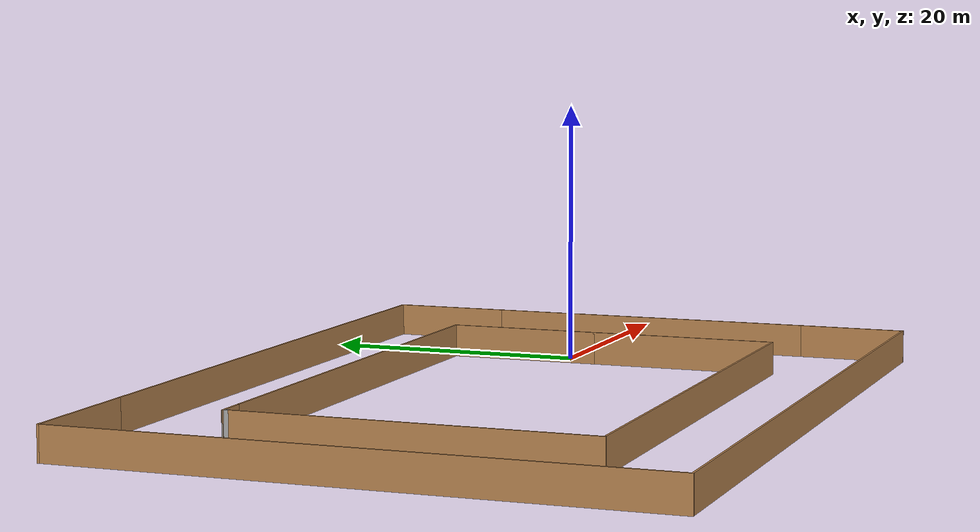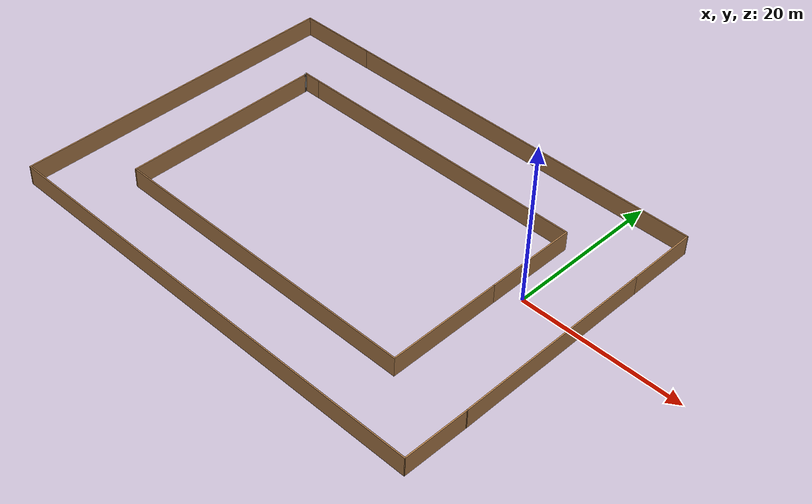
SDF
<?xml version='1.0'?>
<sdf version='1.6'>
  <model name='training_scenarios.world'>
    <pose frame=''>-21.56 -3.68808 0 0 -0 0</pose>
    <link name='Wall_0'>
      <collision name='Wall_0_Collision'>
        <geometry>
          <box>
            <size>11.75 0.15 2.5</size>
          </box>
        </geometry>
        <pose frame=''>0 0 1.25 0 -0 0</pose>
      </collision>
      <visual name='Wall_0_Visual'>
        <pose frame=''>0 0 1.25 0 -0 0</pose>
        <geometry>
          <box>
            <size>11.75 0.15 2.5</size>
          </box>
        </geometry>
        <material>
          <script>
            <uri>file://media/materials/scripts/gazebo.material</uri>
            <name>Gazebo/Wood</name>
          </script>
          <ambient>1 1 1 1</ambient>
        </material>
        <meta>
          <layer>0</layer>
        </meta>
      </visual>
      <pose frame=''>19.67 6.94808 0 0 -0 1.5708</pose>
    </link>
    <link name='Wall_10'>
      <collision name='Wall_10_Collision'>
        <geometry>
          <box>
            <size>48 0.15 2.5</size>
          </box>
        </geometry>
        <pose frame=''>0 0 1.25 0 -0 0</pose>
      </collision>
      <visual name='Wall_10_Visual'>
        <pose frame=''>0 0 1.25 0 -0 0</pose>
        <geometry>
          <box>
            <size>48 0.15 2.5</size>
          </box>
        </geometry>
        <material>
          <script>
            <uri>file://media/materials/scripts/gazebo.material</uri>
            <name>Gazebo/Wood</name>
          </script>
          <ambient>1 1 1 1</ambient>
        </material>
        <meta>
          <layer>0</layer>
        </meta>
      </visual>
      <pose frame=''>5.04954 21.3005 0 0 -0 3.14159</pose>
    </link>
    <link name='Wall_11'>
      <collision name='Wall_11_Collision'>
        <geometry>
          <box>
            <size>10.25 0.15 2.5</size>
          </box>
        </geometry>
        <pose frame=''>0 0 1.25 0 -0 0</pose>
      </collision>
      <visual name='Wall_11_Visual'>
        <pose frame=''>0 0 1.25 0 -0 0</pose>
        <geometry>
          <box>
            <size>10.25 0.15 2.5</size>
          </box>
        </geometry>
        <material>
          <script>
            <uri>file://media/materials/scripts/gazebo.material</uri>
            <name>Gazebo/Wood</name>
          </script>
          <ambient>1 1 1 1</ambient>
        </material>
        <meta>
          <layer>0</layer>
        </meta>
      </visual>
      <pose frame=''>-23.9255 21.3005 0 0 -0 3.14159</pose>
    </link>
    <link name='Wall_12'>
      <collision name='Wall_12_Collision'>
        <geometry>
          <box>
            <size>42.75 0.15 2.5</size>
          </box>
        </geometry>
        <pose frame=''>0 0 1.25 0 -0 0</pose>
      </collision>
      <visual name='Wall_12_Visual'>
        <pose frame=''>0 0 1.25 0 -0 0</pose>
        <geometry>
          <box>
            <size>42.75 0.15 2.5</size>
          </box>
        </geometry>
        <material>
          <script>
            <uri>file://media/materials/scripts/gazebo.material</uri>
            <name>Gazebo/Wood</name>
          </script>
          <ambient>1 1 1 1</ambient>
        </material>
        <meta>
          <layer>0</layer>
        </meta>
      </visual>
      <pose frame=''>-28.9755 0.000457 0 0 -0 -1.5708</pose>
    </link>
    <link name='Wall_13'>
      <collision name='Wall_13_Collision'>
        <geometry>
          <box>
            <size>58 0.15 2.5</size>
          </box>
        </geometry>
        <pose frame=''>0 0 1.25 0 -0 0</pose>
      </collision>
      <visual name='Wall_13_Visual'>
        <pose frame=''>0 0 1.25 0 -0 0</pose>
        <geometry>
          <box>
            <size>58 0.15 2.5</size>
          </box>
        </geometry>
        <material>
          <script>
            <uri>file://media/materials/scripts/gazebo.material</uri>
            <name>Gazebo/Wood</name>
          </script>
          <ambient>1 1 1 1</ambient>
        </material>
        <meta>
          <layer>0</layer>
        </meta>
      </visual>
      <pose frame=''>-0.050456 -21.2995 0 0 -0 0</pose>
    </link>
    <link name='Wall_14'>
      <collision name='Wall_14_Collision'>
        <geometry>
          <box>
            <size>8.30061 0.15 2.5</size>
          </box>
        </geometry>
        <pose frame=''>0 0 1.25 0 -0 0</pose>
      </collision>
      <visual name='Wall_14_Visual'>
        <pose frame=''>0 0 1.25 0 -0 0</pose>
        <geometry>
          <box>
            <size>8.30061 0.15 2.5</size>
          </box>
        </geometry>
        <material>
          <script>
            <uri>file://media/materials/scripts/gazebo.material</uri>
            <name>Gazebo/Wood</name>
          </script>
          <ambient>1 1 1 1</ambient>
        </material>
        <meta>
          <layer>0</layer>
        </meta>
      </visual>
      <pose frame=''>28.9245 -17.2245 0 0 -0 1.55853</pose>
    </link>
    <link name='Wall_16'>
      <collision name='Wall_16_Collision'>
        <geometry>
          <box>
            <size>40.25 0.15 2.5</size>
          </box>
        </geometry>
        <pose frame=''>0 0 1.25 0 -0 0</pose>
      </collision>
      <visual name='Wall_16_Visual'>
        <pose frame=''>0 0 1.25 0 -0 0</pose>
        <geometry>
          <box>
            <size>40.25 0.15 2.5</size>
          </box>
        </geometry>
        <material>
          <script>
            <uri>file://media/materials/scripts/gazebo.material</uri>
            <name>Gazebo/Wood</name>
          </script>
          <ambient>1 1 1 1</ambient>
        </material>
        <meta>
          <layer>0</layer>
        </meta>
      </visual>
      <pose frame=''>-0.38005 -13.2019 0 0 -0 3.14159</pose>
    </link>
    <link name='Wall_17'>
      <collision name='Wall_17_Collision'>
        <geometry>
          <box>
            <size>25.75 0.15 2.5</size>
          </box>
        </geometry>
        <pose frame=''>0 0 1.25 0 -0 0</pose>
      </collision>
      <visual name='Wall_17_Visual'>
        <pose frame=''>0 0 1.25 0 -0 0</pose>
        <geometry>
          <box>
            <size>25.75 0.15 2.5</size>
          </box>
        </geometry>
        <material>
          <script>
            <uri>file://media/materials/scripts/gazebo.material</uri>
            <name>Gazebo/Wood</name>
          </script>
          <ambient>1 1 1 1</ambient>
        </material>
        <meta>
          <layer>0</layer>
        </meta>
      </visual>
      <pose frame=''>-20.4301 -0.401918 0 0 -0 1.5708</pose>
    </link>
    <link name='Wall_2'>
      <collision name='Wall_2_Collision'>
        <geometry>
          <box>
            <size>14.5 0.15 2.5</size>
          </box>
        </geometry>
        <pose frame=''>0 0 1.25 0 -0 0</pose>
      </collision>
      <visual name='Wall_2_Visual'>
        <pose frame=''>0 0 1.25 0 -0 0</pose>
        <geometry>
          <box>
            <size>14.5 0.15 2.5</size>
          </box>
        </geometry>
        <material>
          <script>
            <uri>file://media/materials/scripts/gazebo.material</uri>
            <name>Gazebo/Wood</name>
          </script>
          <ambient>1 1 1 1</ambient>
        </material>
        <meta>
          <layer>0</layer>
        </meta>
      </visual>
      <pose frame=''>19.67 -6.02692 0 0 -0 -1.5708</pose>
    </link>
    <link name='Wall_22'>
      <collision name='Wall_22_Collision'>
        <geometry>
          <box>
            <size>2.25 0.15 2.5</size>
          </box>
        </geometry>
        <pose frame=''>0 0 1.25 0 -0 0</pose>
      </collision>
      <visual name='Wall_22_Visual'>
        <pose frame=''>0 0 1.25 0 -0 0</pose>
        <geometry>
          <box>
            <size>2.25 0.15 2.5</size>
          </box>
        </geometry>
        <material>
          <script>
            <uri>file://media/materials/scripts/gazebo.material</uri>
            <name>Gazebo/Wood</name>
          </script>
          <ambient>1 1 1 1</ambient>
        </material>
        <meta>
          <layer>0</layer>
        </meta>
      </visual>
      <pose frame=''>-19.48 12.7481 0 0 -0 3.14159</pose>
    </link>
    <link name='Wall_24'>
      <collision name='Wall_24_Collision'>
        <geometry>
          <box>
            <size>0.514005 0.15 2.5</size>
          </box>
        </geometry>
        <pose frame=''>0 0 1.25 0 -0 0</pose>
      </collision>
      <visual name='Wall_24_Visual'>
        <pose frame=''>0 0 1.25 0 -0 0</pose>
        <geometry>
          <box>
            <size>0.514005 0.15 2.5</size>
          </box>
        </geometry>
        <material>
          <script>
            <uri>file://media/materials/scripts/gazebo.material</uri>
            <name>Gazebo/Grey</name>
          </script>
          <ambient>1 1 1 1</ambient>
        </material>
        <meta>
          <layer>0</layer>
        </meta>
      </visual>
      <pose frame=''>-20.48 12.5731 0 0 -0 1.8491</pose>
    </link>
    <link name='Wall_4'>
      <collision name='Wall_4_Collision'>
        <geometry>
          <box>
            <size>25.75 0.15 2.5</size>
          </box>
        </geometry>
        <pose frame=''>0 0 1.25 0 -0 0</pose>
      </collision>
      <visual name='Wall_4_Visual'>
        <pose frame=''>0 0 1.25 0 -0 0</pose>
        <geometry>
          <box>
            <size>25.75 0.15 2.5</size>
          </box>
        </geometry>
        <material>
          <script>
            <uri>file://media/materials/scripts/gazebo.material</uri>
            <name>Gazebo/Wood</name>
          </script>
          <ambient>1 1 1 1</ambient>
        </material>
        <meta>
          <layer>0</layer>
        </meta>
      </visual>
      <pose frame=''>28.9745 -0.349544 0 0 -0 -1.5708</pose>
    </link>
    <link name='Wall_6'>
      <collision name='Wall_6_Collision'>
        <geometry>
          <box>
            <size>38.25 0.15 2.5</size>
          </box>
        </geometry>
        <pose frame=''>0 0 1.25 0 -0 0</pose>
      </collision>
      <visual name='Wall_6_Visual'>
        <pose frame=''>0 0 1.25 0 -0 0</pose>
        <geometry>
          <box>
            <size>38.25 0.15 2.5</size>
          </box>
        </geometry>
        <material>
          <script>
            <uri>file://media/materials/scripts/gazebo.material</uri>
            <name>Gazebo/Wood</name>
          </script>
          <ambient>1 1 1 1</ambient>
        </material>
        <meta>
          <layer>0</layer>
        </meta>
      </visual>
      <pose frame=''>0.61995 12.7481 0 0 -0 3.14159</pose>
    </link>
    <link name='Wall_9'>
      <collision name='Wall_9_Collision'>
        <geometry>
          <box>
            <size>9 0.15 2.5</size>
          </box>
        </geometry>
        <pose frame=''>0 0 1.25 0 -0 0</pose>
      </collision>
      <visual name='Wall_9_Visual'>
        <pose frame=''>0 0 1.25 0 -0 0</pose>
        <geometry>
          <box>
            <size>9 0.15 2.5</size>
          </box>
        </geometry>
        <material>
          <script>
            <uri>file://media/materials/scripts/gazebo.material</uri>
            <name>Gazebo/Wood</name>
          </script>
          <ambient>1 1 1 1</ambient>
        </material>
        <meta>
          <layer>0</layer>
        </meta>
      </visual>
      <pose frame=''>28.9745 16.8755 0 0 -0 1.5708</pose>
    </link>
    <static>1</static>
  </model>
</sdf>
